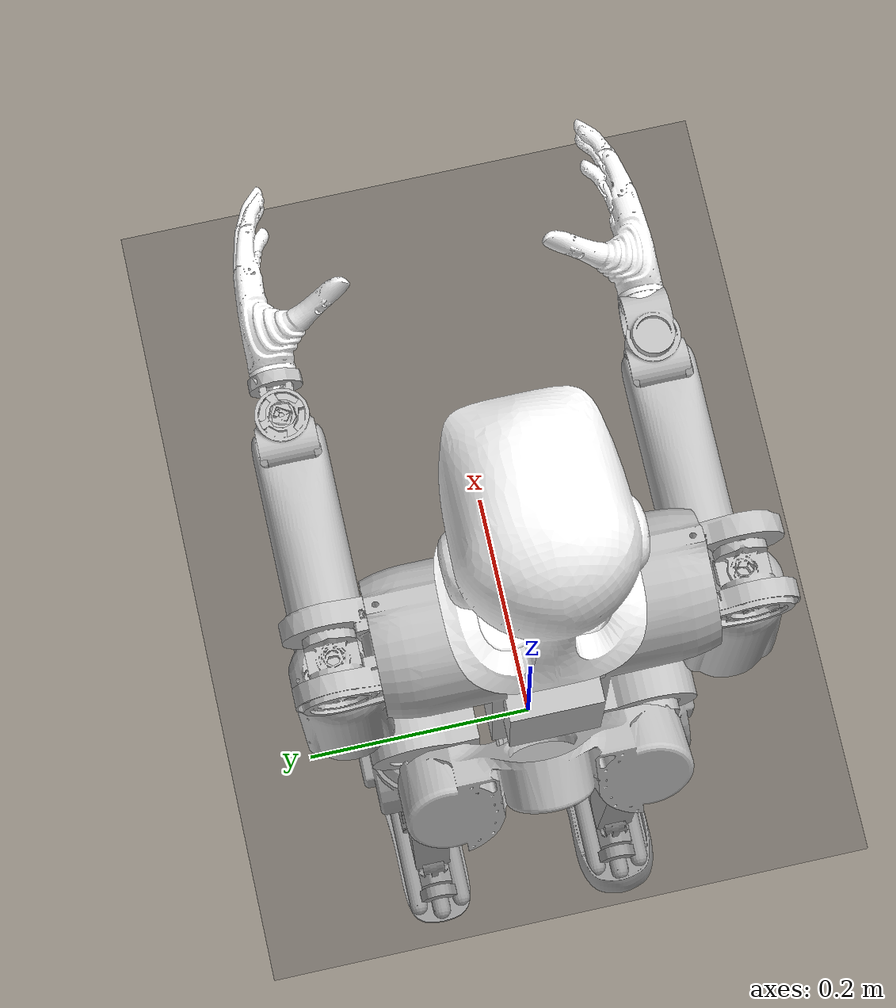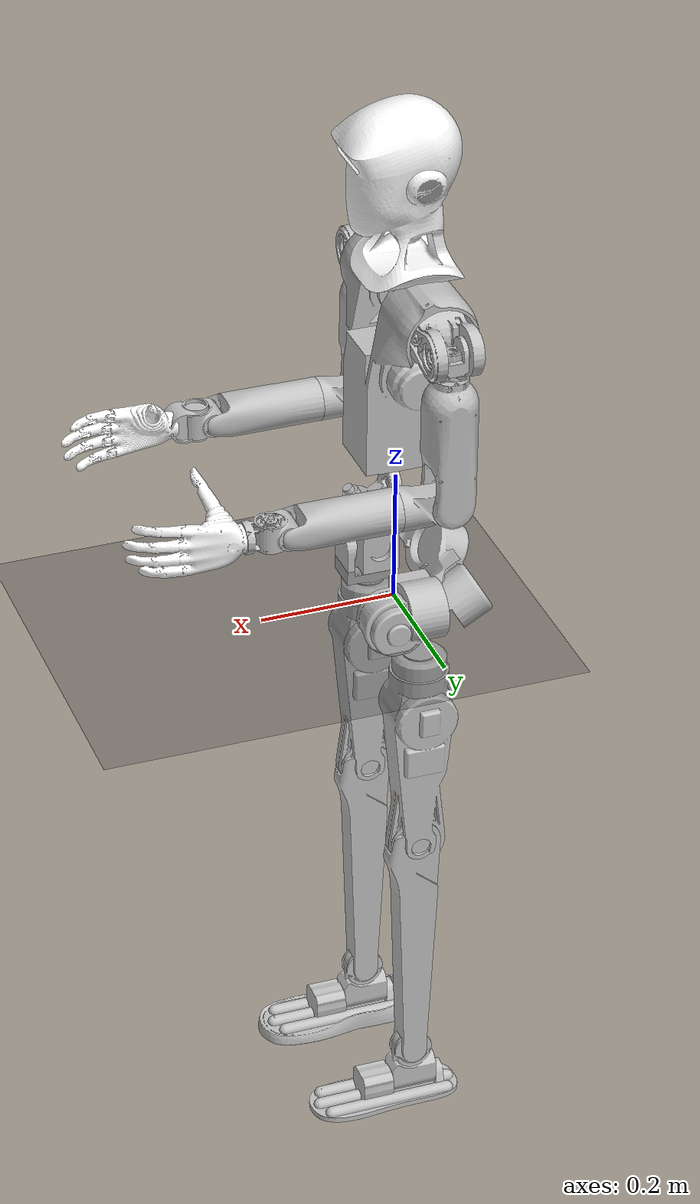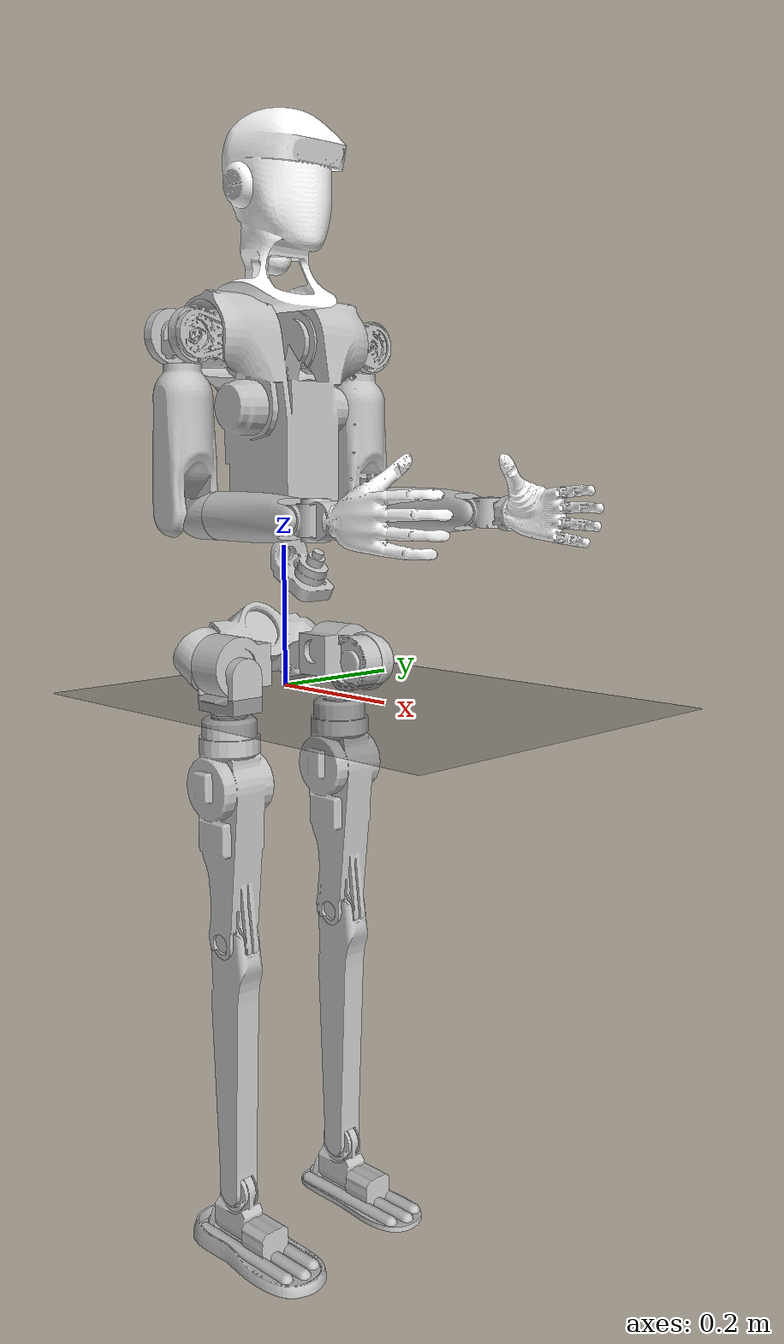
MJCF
<mujoco model="x3_zz1">
  <compiler angle="radian" meshdir="./"/>
  <statistic meansize="0.177939" extent="1.9618" center="0.0465088 1.93584e-06 -0.21519"/>
  <default>
    <joint damping="0.1" armature="0.01" frictionloss="0.1"/>
  </default>
  <asset>
    <texture type="skybox" builtin="gradient" width="128" height="128" rgb1="0.4 0.6 0.8" rgb2="0 0 0"/>
    <texture name="plane" type="2d" builtin="checker" rgb1="0.2 0.2 0.2" rgb2="0.3 0.3 0.3" width="512"
              height="512"/>
    <material name="plane" reflectance="0.0" texture="plane" texrepeat="1 1" texuniform="true"/>
    <mesh name="pelvis" content_type="model/stl" file="meshes/pelvis.STL"/>
    <mesh name="left_hip_pitch_link" content_type="model/stl" file="meshes/left_hip_pitch_link.STL"/>
    <mesh name="left_hip_roll_link" content_type="model/stl" file="meshes/left_hip_roll_link.STL"/>
    <mesh name="left_hip_yaw_link" content_type="model/stl" file="meshes/left_hip_yaw_link.STL"/>
    <mesh name="left_knee_link" content_type="model/stl" file="meshes/left_knee_link.STL"/>
    <mesh name="left_ankle_pitch_link" content_type="model/stl" file="meshes/left_ankle_pitch_link.STL"/>
    <mesh name="left_ankle_roll_link" content_type="model/stl" file="meshes/left_ankle_roll_link.STL"/>
    <mesh name="right_hip_pitch_link" content_type="model/stl" file="meshes/right_hip_pitch_link.STL"/>
    <mesh name="right_hip_roll_link" content_type="model/stl" file="meshes/right_hip_roll_link.STL"/>
    <mesh name="right_hip_yaw_link" content_type="model/stl" file="meshes/right_hip_yaw_link.STL"/>
    <mesh name="right_knee_link" content_type="model/stl" file="meshes/right_knee_link.STL"/>
    <mesh name="right_ankle_pitch_link" content_type="model/stl" file="meshes/right_ankle_pitch_link.STL"/>
    <mesh name="right_ankle_roll_link" content_type="model/stl" file="meshes/right_ankle_roll_link.STL"/>
    <mesh name="waist_roll_link" content_type="model/stl" file="meshes/waist_roll_link.STL"/>
    <mesh name="torso_link" content_type="model/stl" file="meshes/torso_link.STL"/>
    <mesh name="left_shoulder_pitch_link" content_type="model/stl" file="meshes/left_shoulder_pitch_link.STL"/>
    <mesh name="left_shoulder_roll_link" content_type="model/stl" file="meshes/left_shoulder_roll_link.STL"/>
    <mesh name="left_shoulder_yaw_link" content_type="model/stl" file="meshes/left_shoulder_yaw_link.STL"/>
    <mesh name="left_elbow_link" content_type="model/stl" file="meshes/left_elbow_link.STL"/>
    <mesh name="left_wrist_roll_link" content_type="model/stl" file="meshes/left_wrist_roll_link.STL"/>
    <mesh name="left_wrist_pitch_link" content_type="model/stl" file="meshes/left_wrist_pitch_link.STL"/>
    <mesh name="left_wrist_yaw_link" content_type="model/stl" file="meshes/left_wrist_yaw_link.STL"/>
    <mesh name="left_hand_link" content_type="model/stl" file="meshes/left_hand_link.STL"/>
    <mesh name="right_shoulder_pitch_link" content_type="model/stl" file="meshes/right_shoulder_pitch_link.STL"/>
    <mesh name="right_shoulder_roll_link" content_type="model/stl" file="meshes/right_shoulder_roll_link.STL"/>
    <mesh name="right_shoulder_yaw_link" content_type="model/stl" file="meshes/right_shoulder_yaw_link.STL"/>
    <mesh name="right_elbow_link" content_type="model/stl" file="meshes/right_elbow_link.STL"/>
    <mesh name="right_wrist_roll_link" content_type="model/stl" file="meshes/right_wrist_roll_link.STL"/>
    <mesh name="right_wrist_pitch_link" content_type="model/stl" file="meshes/right_wrist_pitch_link.STL"/>
    <mesh name="right_wrist_yaw_link" content_type="model/stl" file="meshes/right_wrist_yaw_link.STL"/>
    <mesh name="right_hand_link" content_type="model/stl" file="meshes/right_hand_link.STL"/>
    <mesh name="Technology head_link" content_type="model/stl" file="meshes/Technology head_link.STL"/>
  </asset>

  <worldbody>
    <geom name="floor" pos="0.001 0 0" size="100 10 .125" type="plane" material="plane" condim="3"
          conaffinity="15" friction="0.6 0.6 0.001"/>
    <light mode="trackcom" pos="0 0 5" dir="0 0 -1"/>
    <body name="pelvis">
      <inertial pos="0.00083229 -3.165e-05 0.084987" quat="0.999992 0.000316471 -0.00264903 -0.00312728" mass="3.189" diaginertia="0.0123657 0.0113015 0.00449499"/>
      <joint name="floating_base_joint" type="free"/>
      <geom type="mesh" contype="0" conaffinity="0" group="1" density="0" rgba="0.75294 0.75294 0.75294 1" mesh="pelvis"/>
      <geom type="mesh" rgba="0.75294 0.75294 0.75294 1" mesh="pelvis"/>
      <body name="left_hip_pitch_link" pos="0 0.0495 0.044">
        <inertial pos="-0.0022605 0.051836 -0.014091" quat="0.599899 0.797342 -0.0646695 0.0135971" mass="0.961" diaginertia="0.00116699 0.000950291 0.000815138"/>
        <joint name="left_hip_pitch_joint" pos="0 0 0" axis="0 1 0" range="-2.3562 2.3562" actuatorfrcrange="-75 75"/>
        <geom type="mesh" contype="0" conaffinity="0" group="1" density="0" rgba="0.75294 0.75294 0.75294 1" mesh="left_hip_pitch_link"/>
        <geom type="mesh" rgba="0.75294 0.75294 0.75294 1" mesh="left_hip_pitch_link"/>
        <body name="left_hip_roll_link" pos="0 0.0555 -0.016">
          <inertial pos="0.0043213 0 -0.027634" quat="0.408553 0.57731 0.577033 0.408449" mass="0.14" diaginertia="0.00018358 0.000141244 0.000101956"/>
          <joint name="left_hip_roll_joint" pos="0 0 0" axis="1 0 0" range="-0.5236 1.5708" actuatorfrcrange="-87 87"/>
          <geom type="mesh" contype="0" conaffinity="0" group="1" density="0" rgba="0.75294 0.75294 0.75294 1" mesh="left_hip_roll_link"/>
          <geom type="mesh" rgba="0.75294 0.75294 0.75294 1" mesh="left_hip_roll_link"/>
          <body name="left_hip_yaw_link" pos="0 0 -0.0536">
            <inertial pos="0.00010121 1.383e-05 -0.102311" quat="0.99999 0.00375205 0.0025479 0.000511966" mass="2.275" diaginertia="0.0191971 0.018658 0.00224713"/>
            <joint name="left_hip_yaw_joint" pos="0 0 0" axis="0 0 1" range="-1.8326 1.8326" actuatorfrcrange="-87 87"/>
            <geom type="mesh" contype="0" conaffinity="0" group="1" density="0" rgba="0.75294 0.75294 0.75294 1" mesh="left_hip_yaw_link"/>
            <geom type="mesh" rgba="0.75294 0.75294 0.75294 1" mesh="left_hip_yaw_link"/>
            <body name="left_knee_link" pos="0 0 -0.3304">
              <inertial pos="0.00334882 -0.00032247 -0.149842" quat="0.698241 -0.0104039 -0.00666549 0.715757" mass="0.635" diaginertia="0.0111018 0.0110139 0.000311373"/>
              <joint name="left_knee_joint" pos="0 0 0" axis="0 1 0" range="-0.01745 2.3562" actuatorfrcrange="-120 120"/>
              <geom type="mesh" contype="0" conaffinity="0" group="1" density="0" rgba="0.75294 0.75294 0.75294 1" mesh="left_knee_link"/>
              <geom type="mesh" rgba="0.75294 0.75294 0.75294 1" mesh="left_knee_link"/>
              <body name="left_ankle_pitch_link" pos="0 0 -0.39">
                <inertial pos="0.0024178 -1.256e-05 -0.0238176" quat="0.704903 0.052882 0.0527757 0.705358" mass="0.22" diaginertia="0.00023561 0.000170507 9.99229e-05"/>
                <joint name="left_ankle_pitch_joint" pos="0 0 0" axis="0 1 0" range="-0.873 1.0472" actuatorfrcrange="-89 89"/>
                <geom type="mesh" contype="0" conaffinity="0" group="1" density="0" rgba="0.75294 0.75294 0.75294 1" mesh="left_ankle_pitch_link"/>
                <geom type="mesh" rgba="0.75294 0.75294 0.75294 1" mesh="left_ankle_pitch_link"/>
                <body name="left_ankle_roll_link" pos="0 0 -0.058">
                  <inertial pos="0.0510876 0.00023922 -0.00447269" quat="0 0.707107 0 0.707107" mass="0.411" diaginertia="0.00047916 0.00047226 9.993e-05"/>
                  <joint name="left_ankle_roll_joint" pos="0 0 0" axis="1 0 0" range="-0.5236 0.5236" actuatorfrcrange="-12 12"/>
                  <geom type="mesh" contype="0" conaffinity="0" group="1" density="0" rgba="0.75294 0.75294 0.75294 1" mesh="left_ankle_roll_link"/>
                  <geom size="0.01 0.1025" pos="0.042 0 -0.019" quat="0.707105 0 0.707108 0" type="capsule" rgba="0.75294 0.75294 0.75294 1"/>
                  <geom size="0.01 0.0925" pos="0.042 0.025 -0.019" quat="0.707105 0 0.707108 0" type="capsule" rgba="0.75294 0.75294 0.75294 1"/>
                  <geom size="0.01 0.0925" pos="0.042 -0.025 -0.019" quat="0.707105 0 0.707108 0" type="capsule" rgba="0.75294 0.75294 0.75294 1"/>
                </body>
              </body>
            </body>
          </body>
        </body>
      </body>
      <body name="right_hip_pitch_link" pos="0 -0.0495 0.044">
        <inertial pos="-0.0022605 -0.051836 -0.014091" quat="0.797342 0.599899 -0.0135971 0.0646695" mass="0.961" diaginertia="0.00116699 0.000950291 0.000815138"/>
        <joint name="right_hip_pitch_joint" pos="0 0 0" axis="0 1 0" range="-2.3562 2.3562" actuatorfrcrange="-75 75"/>
        <geom type="mesh" contype="0" conaffinity="0" group="1" density="0" rgba="0.75294 0.75294 0.75294 1" mesh="right_hip_pitch_link"/>
        <geom type="mesh" rgba="0.75294 0.75294 0.75294 1" mesh="right_hip_pitch_link"/>
        <body name="right_hip_roll_link" pos="0 -0.0555 -0.016">
          <inertial pos="0.0043213 0 -0.027634" quat="0.408553 0.57731 0.577033 0.408449" mass="0.14" diaginertia="0.00018358 0.000141244 0.000101956"/>
          <joint name="right_hip_roll_joint" pos="0 0 0" axis="1 0 0" range="-1.5708 0.5236" actuatorfrcrange="-87 87"/>
          <geom type="mesh" contype="0" conaffinity="0" group="1" density="0" rgba="0.75294 0.75294 0.75294 1" mesh="right_hip_roll_link"/>
          <geom type="mesh" rgba="0.75294 0.75294 0.75294 1" mesh="right_hip_roll_link"/>
          <body name="right_hip_yaw_link" pos="0 0 -0.0536">
            <inertial pos="0.00028095 -0.00037298 -0.102311" quat="0.999997 0.00155532 0.00134116 0.00120674" mass="2.275" diaginertia="0.0191961 0.0186572 0.00224772"/>
            <joint name="right_hip_yaw_joint" pos="0 0 0" axis="0 0 1" range="-1.8326 1.8326" actuatorfrcrange="-87 87"/>
            <geom type="mesh" contype="0" conaffinity="0" group="1" density="0" rgba="0.75294 0.75294 0.75294 1" mesh="right_hip_yaw_link"/>
            <geom type="mesh" rgba="0.75294 0.75294 0.75294 1" mesh="right_hip_yaw_link"/>
            <body name="right_knee_link" pos="0 0 -0.3304">
              <inertial pos="0.0033489 -0.00032248 -0.14984" quat="0.715839 -0.00666391 -0.0104045 0.698156" mass="0.635" diaginertia="0.0111013 0.0110142 0.000311373"/>
              <joint name="right_knee_joint" pos="0 0 0" axis="0 1 0" range="-0.01745 2.3562" actuatorfrcrange="-120 120"/>
              <geom type="mesh" contype="0" conaffinity="0" group="1" density="0" rgba="0.75294 0.75294 0.75294 1" mesh="right_knee_link"/>
              <geom type="mesh" rgba="0.75294 0.75294 0.75294 1" mesh="right_knee_link"/>
              <body name="right_ankle_pitch_link" pos="0 0 -0.39">
                <inertial pos="0.0024178 -1.257e-05 -0.023818" quat="0.704903 0.052882 0.0527757 0.705358" mass="0.22" diaginertia="0.00023561 0.000170507 9.99229e-05"/>
                <joint name="right_ankle_pitch_joint" pos="0 0 0" axis="0 1 0" range="-0.873 1.0472" actuatorfrcrange="-89 89"/>
                <geom type="mesh" contype="0" conaffinity="0" group="1" density="0" rgba="0.75294 0.75294 0.75294 1" mesh="right_ankle_pitch_link"/>
                <geom type="mesh" rgba="0.75294 0.75294 0.75294 1" mesh="right_ankle_pitch_link"/>
                <body name="right_ankle_roll_link" pos="0 0 -0.058">
                  <inertial pos="0.0510876 0.00023921 -0.00447269" quat="0 0.707107 0 0.707107" mass="0.411" diaginertia="0.00047916 0.00047226 9.993e-05"/>
                  <joint name="right_ankle_roll_joint" pos="0 0 0" axis="1 0 0" range="-0.5236 0.5236" actuatorfrcrange="-12 12"/>
                  <geom type="mesh" contype="0" conaffinity="0" group="1" density="0" rgba="0.75294 0.75294 0.75294 1" mesh="right_ankle_roll_link"/>
                  <geom size="0.01 0.1025" pos="0.042 0 -0.019" quat="0.707105 0 0.707108 0" type="capsule" rgba="0.75294 0.75294 0.75294 1"/>
                  <geom size="0.01 0.0925" pos="0.042 0.025 -0.019" quat="0.707105 0 0.707108 0" type="capsule" rgba="0.75294 0.75294 0.75294 1"/>
                  <geom size="0.01 0.0925" pos="0.042 -0.025 -0.019" quat="0.707105 0 0.707108 0" type="capsule" rgba="0.75294 0.75294 0.75294 1"/>
                </body>
              </body>
            </body>
          </body>
        </body>
      </body>
      <body name="waist_roll_link" pos="0.00085 0 0.19">
        <inertial pos="-0.00017849 0 0.00743447" quat="0.514981 0.484556 0.484556 0.514981" mass="0.259" diaginertia="0.00011059 0.000104495 8.4235e-05"/>
        <joint name="waist_roll_joint" pos="0 0 0" axis="1 0 0" range="-0.5236 0.5236" actuatorfrcrange="-87 87"/>
        <geom type="mesh" contype="0" conaffinity="0" group="1" density="0" rgba="0.75294 0.75294 0.75294 1" mesh="waist_roll_link"/>
        <body name="torso_link">
          <inertial pos="-0.00124613 -0.00517123 0.261664" quat="0.999607 0.0236839 0.0143157 -0.0045496" mass="6.886" diaginertia="0.134104 0.130091 0.0208243"/>
          <joint name="waist_yaw_joint" pos="0 0 0" axis="0 0 1" range="-1.5708 1.5708" actuatorfrcrange="-87 87"/>
          <geom type="mesh" contype="0" conaffinity="0" group="1" density="0" rgba="0.75294 0.75294 0.75294 1" mesh="torso_link"/>
          <geom type="mesh" rgba="0.75294 0.75294 0.75294 1" mesh="torso_link"/>
          <geom pos="-0.012 0 0.348" quat="1 0 0 0" type="mesh" contype="0" conaffinity="0" group="1" density="0" rgba="1 1 1 1" mesh="Technology head_link"/>
          <geom pos="-0.012 0 0.348" quat="1 0 0 0" type="mesh" rgba="1 1 1 1" mesh="Technology head_link"/>
          <body name="left_shoulder_pitch_link" pos="-0.015 0.05835 0.2885">
            <inertial pos="5.543e-05 0.0554533 5.429e-05" quat="0.500477 0.499362 -0.499832 0.500328" mass="1.277" diaginertia="0.00194002 0.00178135 0.00103975"/>
            <joint name="left_shoulder_pitch_joint" pos="0 0 0" axis="0 1 0" range="-3.6652 2.0944" actuatorfrcrange="-48 48"/>
            <geom type="mesh" contype="0" conaffinity="0" group="1" density="0" rgba="0.75294 0.75294 0.75294 1" mesh="left_shoulder_pitch_link"/>
            <geom type="mesh" rgba="0.75294 0.75294 0.75294 1" mesh="left_shoulder_pitch_link"/>
            <body name="left_shoulder_roll_link" pos="-5e-05 0.1012 0">
              <inertial pos="0 -0.00015563 -0.00797243" quat="0.449914 0.545507 0.449914 0.545507" mass="0.229" diaginertia="7.05648e-05 6.60152e-05 5.784e-05"/>
              <joint name="left_shoulder_roll_joint" pos="0 0 0" axis="1 0 0" range="-0.2618 3.1416" actuatorfrcrange="-84 84"/>
              <geom type="mesh" contype="0" conaffinity="0" group="1" density="0" rgba="0.75294 0.75294 0.75294 1" mesh="left_shoulder_roll_link"/>
              <geom type="mesh" rgba="0.75294 0.75294 0.75294 1" mesh="left_shoulder_roll_link"/>
              <body name="left_shoulder_yaw_link">
                <inertial pos="-7.8318e-05 0.001011 -0.12915" mass="1.194" diaginertia="0.00412845 0.00411827 0.00084103"/>
                <joint name="left_shoulder_yaw_joint" pos="0 0 0" axis="0 0 1" range="-2.1817 2.1817" actuatorfrcrange="-84 84"/>
                <geom type="mesh" contype="0" conaffinity="0" group="1" density="0" rgba="0.75294 0.75294 0.75294 1" mesh="left_shoulder_yaw_link"/>
                <geom type="mesh" rgba="0.75294 0.75294 0.75294 1" mesh="left_shoulder_yaw_link"/>
                <body name="left_elbow_link" pos="0 0 -0.23">
                  <inertial pos="0.0167741 0 -0.00133301" quat="0 0.684589 0 0.728929" mass="0.185" diaginertia="0.000124726 0.00011358 7.98035e-05"/>
                  <joint name="left_elbow_joint" pos="0 0 0" axis="0 1 0" range="-0.6981 1.5707" actuatorfrcrange="-37 37"/>
                  <geom type="mesh" contype="0" conaffinity="0" group="1" density="0" rgba="0.75294 0.75294 0.75294 1" mesh="left_elbow_link"/>
                  <geom type="mesh" rgba="0.75294 0.75294 0.75294 1" mesh="left_elbow_link"/>
                  <body name="left_wrist_roll_link">
                    <inertial pos="0.0985386 -0.00025438 -0.00071846" quat="0.49661 0.497949 0.510134 0.495166" mass="1.372" diaginertia="0.00443163 0.00434654 0.000486748"/>
                    <joint name="left_wrist_roll_joint" pos="0 0 0" axis="1 0 0" range="-2.0071 2.0071" actuatorfrcrange="-37 37"/>
                    <geom type="mesh" contype="0" conaffinity="0" group="1" density="0" rgba="0.75294 0.75294 0.75294 1" mesh="left_wrist_roll_link"/>
                    <geom type="mesh" rgba="0.75294 0.75294 0.75294 1" mesh="left_wrist_roll_link"/>
                    <body name="left_wrist_pitch_link" pos="0.235 0 0">
                      <inertial pos="0.0075268 0 0" quat="0.5 0.5 -0.5 0.5" mass="0.042" diaginertia="1.443e-05 1.052e-05 7.83e-06"/>
                      <joint name="left_wrist_pitch_joint" pos="0 0 0" axis="0 1 0" range="-0.5236 0.5236" actuatorfrcrange="-20 20"/>
                      <geom type="mesh" contype="0" conaffinity="0" group="1" density="0" rgba="0.75294 0.75294 0.75294 1" mesh="left_wrist_pitch_link"/>
                      <geom type="mesh" rgba="0.75294 0.75294 0.75294 1" mesh="left_wrist_pitch_link"/>
                      <body name="left_wrist_yaw_link" pos="0.021 0 0">
                        <inertial pos="0.065664 0.0134012 -0.00553818" quat="0.63389 0.310977 0.60498 0.368071" mass="0.53" diaginertia="0.00175271 0.00146535 0.000533341"/>
                        <joint name="left_wrist_yaw_joint" pos="0 0 0" axis="0 0 1" range="-1.1344 1.1344" actuatorfrcrange="-25 25"/>
                        <geom type="mesh" contype="0" conaffinity="0" group="1" density="0" rgba="0.75294 0.75294 0.75294 1" mesh="left_wrist_yaw_link"/>
                        <geom pos="0.031 0 0" quat="1 0 0 0" type="mesh" contype="0" conaffinity="0" group="1" density="0" rgba="1 1 1 1" mesh="left_hand_link"/>
                        <geom pos="0.031 0 0" quat="1 0 0 0" type="mesh" rgba="1 1 1 1" mesh="left_hand_link"/>
                      </body>
                    </body>
                  </body>
                </body>
              </body>
            </body>
          </body>
          <body name="right_shoulder_pitch_link" pos="-0.015 -0.0583 0.2885">
            <inertial pos="0.00015543 -0.0554533 -5.429e-05" quat="0.500328 0.499832 -0.499362 0.500477" mass="1.277" diaginertia="0.00194002 0.00178135 0.00103975"/>
            <joint name="right_shoulder_pitch_joint" pos="0 0 0" axis="0 1 0" range="-3.6652 2.0944" actuatorfrcrange="-48 48"/>
            <geom type="mesh" contype="0" conaffinity="0" group="1" density="0" rgba="0.75294 0.75294 0.75294 1" mesh="right_shoulder_pitch_link"/>
            <geom type="mesh" rgba="0.75294 0.75294 0.75294 1" mesh="right_shoulder_pitch_link"/>
            <body name="right_shoulder_roll_link" pos="5e-05 -0.1012 0">
              <inertial pos="0 -0.00015563 -0.00797243" quat="0.449914 0.545507 0.449914 0.545507" mass="0.229" diaginertia="7.05648e-05 6.60152e-05 5.784e-05"/>
              <joint name="right_shoulder_roll_joint" pos="0 0 0" axis="1 0 0" range="-3.1416 0.2618" actuatorfrcrange="-84 84"/>
              <geom type="mesh" contype="0" conaffinity="0" group="1" density="0" rgba="0.75294 0.75294 0.75294 1" mesh="right_shoulder_roll_link"/>
              <geom type="mesh" rgba="0.75294 0.75294 0.75294 1" mesh="right_shoulder_roll_link"/>
              <body name="right_shoulder_yaw_link">
                <inertial pos="-7.8318e-05 0.001011 -0.12915" mass="1.194" diaginertia="0.00412845 0.00411827 0.00084103"/>
                <joint name="right_shoulder_yaw_joint" pos="0 0 0" axis="0 0 1" range="-2.1817 2.1817" actuatorfrcrange="-84 84"/>
                <geom type="mesh" contype="0" conaffinity="0" group="1" density="0" rgba="0.75294 0.75294 0.75294 1" mesh="right_shoulder_yaw_link"/>
                <geom type="mesh" rgba="0.75294 0.75294 0.75294 1" mesh="right_shoulder_yaw_link"/>
                <body name="right_elbow_link" pos="0 0 -0.23">
                  <inertial pos="0.0167741 0 -0.00133301" quat="0 0.684589 0 0.728929" mass="0.185" diaginertia="0.000124726 0.00011358 7.98035e-05"/>
                  <joint name="right_elbow_joint" pos="0 0 0" axis="0 1 0" range="-0.6981 1.5707" actuatorfrcrange="-37 37"/>
                  <geom type="mesh" contype="0" conaffinity="0" group="1" density="0" rgba="0.75294 0.75294 0.75294 1" mesh="right_elbow_link"/>
                  <geom type="mesh" rgba="0.75294 0.75294 0.75294 1" mesh="right_elbow_link"/>
                  <body name="right_wrist_roll_link">
                    <inertial pos="0.0985386 -0.00025438 -0.00071846" quat="0.49661 0.497949 0.510134 0.495166" mass="1.372" diaginertia="0.00443163 0.00434654 0.000486748"/>
                    <joint name="right_wrist_roll_joint" pos="0 0 0" axis="1 0 0" range="-2.0071 2.0071" actuatorfrcrange="-37 37"/>
                    <geom type="mesh" contype="0" conaffinity="0" group="1" density="0" rgba="0.75294 0.75294 0.75294 1" mesh="right_wrist_roll_link"/>
                    <geom type="mesh" rgba="0.75294 0.75294 0.75294 1" mesh="right_wrist_roll_link"/>
                    <body name="right_wrist_pitch_link" pos="0.235 0 0">
                      <inertial pos="0.0075268 0 0" quat="0.5 0.5 -0.5 0.5" mass="0.042" diaginertia="1.443e-05 1.052e-05 7.83e-06"/>
                      <joint name="right_wrist_pitch_joint" pos="0 0 0" axis="0 1 0" range="-0.5236 0.5236" actuatorfrcrange="-20 20"/>
                      <geom type="mesh" contype="0" conaffinity="0" group="1" density="0" rgba="0.75294 0.75294 0.75294 1" mesh="right_wrist_pitch_link"/>
                      <geom type="mesh" rgba="0.75294 0.75294 0.75294 1" mesh="right_wrist_pitch_link"/>
                      <body name="right_wrist_yaw_link" pos="0.021 0 0">
                        <inertial pos="0.0587513 0.0259836 0.0207622" quat="0.303167 0.500411 0.353966 0.729649" mass="0.53" diaginertia="0.00176432 0.00150236 0.000557811"/>
                        <joint name="right_wrist_yaw_joint" pos="0 0 0" axis="0 0 1" range="-1.1344 1.1344" actuatorfrcrange="-25 25"/>
                        <geom type="mesh" contype="0" conaffinity="0" group="1" density="0" rgba="0.75294 0.75294 0.75294 1" mesh="right_wrist_yaw_link"/>
                        <geom pos="0.031 0 0" quat="1 0 0 0" type="mesh" contype="0" conaffinity="0" group="1" density="0" rgba="1 1 1 1" mesh="right_hand_link"/>
                        <geom pos="0.031 0 0" quat="1 0 0 0" type="mesh" rgba="1 1 1 1" mesh="right_hand_link"/>
                      </body>
                    </body>
                  </body>
                </body>
              </body>
            </body>
          </body>
        </body>
      </body>
    </body>
  </worldbody>

  <actuator>
    <motor name="left_hip_pitch_joint" joint="left_hip_pitch_joint"/>
    <motor name="left_hip_roll_joint" joint="left_hip_roll_joint"/>
    <motor name="left_hip_yaw_joint" joint="left_hip_yaw_joint"/>
    <motor name="left_knee_joint" joint="left_knee_joint"/>
    <motor name="left_ankle_pitch_joint" joint="left_ankle_pitch_joint"/>
    <motor name="left_ankle_roll_joint" joint="left_ankle_roll_joint"/>
    <motor name="right_hip_pitch_joint" joint="right_hip_pitch_joint"/>
    <motor name="right_hip_roll_joint" joint="right_hip_roll_joint"/>
    <motor name="right_hip_yaw_joint" joint="right_hip_yaw_joint"/>
    <motor name="right_knee_joint" joint="right_knee_joint"/>
    <motor name="right_ankle_pitch_joint" joint="right_ankle_pitch_joint"/>
    <motor name="right_ankle_roll_joint" joint="right_ankle_roll_joint"/>
    <motor name="waist_roll_joint" joint="waist_roll_joint"/>
    <motor name="waist_yaw_joint" joint="waist_yaw_joint"/>
    <motor name="left_shoulder_pitch_joint" joint="left_shoulder_pitch_joint"/>
    <motor name="left_shoulder_roll_joint" joint="left_shoulder_roll_joint"/>
    <motor name="left_shoulder_yaw_joint" joint="left_shoulder_yaw_joint"/>
    <motor name="left_elbow_joint" joint="left_elbow_joint"/>
    <motor name="left_wrist_roll_joint" joint="left_wrist_roll_joint"/>
    <motor name="left_wrist_pitch_joint" joint="left_wrist_pitch_joint"/>
    <motor name="left_wrist_yaw_joint" joint="left_wrist_yaw_joint"/>
    <motor name="right_shoulder_pitch_joint" joint="right_shoulder_pitch_joint"/>
    <motor name="right_shoulder_roll_joint" joint="right_shoulder_roll_joint"/>
    <motor name="right_shoulder_yaw_joint" joint="right_shoulder_yaw_joint"/>
    <motor name="right_elbow_joint" joint="right_elbow_joint"/>
    <motor name="right_wrist_roll_joint" joint="right_wrist_roll_joint"/>
    <motor name="right_wrist_pitch_joint" joint="right_wrist_pitch_joint"/>
    <motor name="right_wrist_yaw_joint" joint="right_wrist_yaw_joint"/>
  </actuator>

</mujoco>
